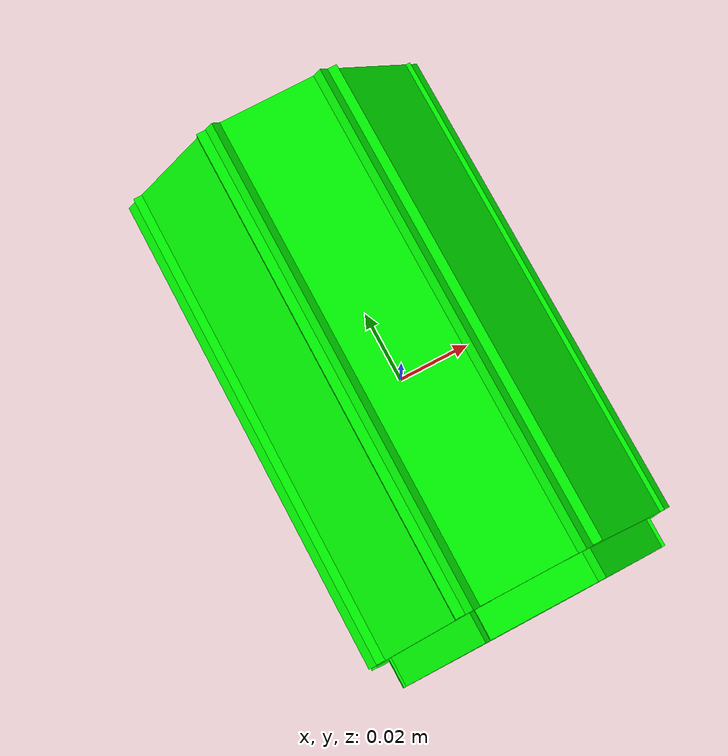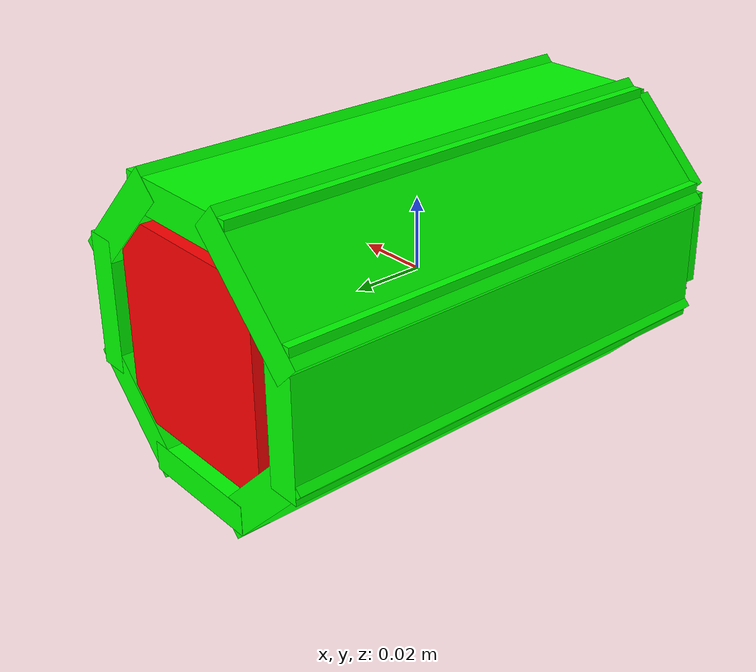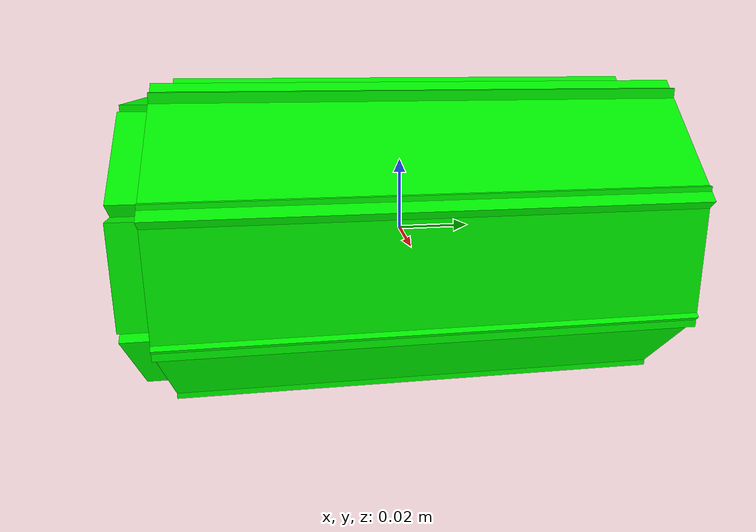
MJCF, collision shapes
<mujoco model="Cup_1">
  <compiler angle="radian" />
  <default>
    <default class="/">
      <default class="__VISUAL_MJT__">
        <geom contype="0" conaffinity="0" />
      </default>
      <default class="__STRUCTURAL_MJT__">
        <geom contype="8" conaffinity="15" group="4" friction="0.9 0.9 0.001" solref="0.025" solimp="0.998 0.998" />
      </default>
      <default class="__DYNAMIC_MJT__">
        <geom conaffinity="15" group="4" friction="0.9 0.9 0.001" solref="0.025" solimp="0.998 0.998" />
      </default>
    </default>
  </default>
  <asset>
    <material name="material_Cup_Decals_Off_Mat" class="/" rgba="1 1 1 1" metallic="0.000000" roughness="0.020000" clearcoat="0.25" clearcoatroughness="0.05" transmission="1.00" thickness="0.002" ior="1.50" />
    <material name="material_Cup1_Mat" class="/" rgba="1 1 1 1" metallic="0.000000" roughness="0.020000" clearcoat="0.25" clearcoatroughness="0.05" transmission="1.00" thickness="0.002" ior="1.50" />
    <mesh name="Cup_1_cup_1_0" class="/" content_type="model/obj" file="assets/Cup_1_cup_1/Cup_1_cup_1_0.obj" />
    <mesh name="Cup_1_cup_1_1" class="/" content_type="model/obj" file="assets/Cup_1_cup_1/Cup_1_cup_1_1.obj" />
  </asset>
  <worldbody>
    <body name="Cup_1">
      <joint name="Cup_1_free" class="/" type="free" limited="false" actuatorfrclimited="false" damping="0.1" />
      <geom name="Cup_1_cup_1_0" class="__VISUAL_MJT__" type="mesh" material="material_Cup_Decals_Off_Mat" mesh="Cup_1_cup_1_0" pos="0 -0.07115 0.00039" mass="0"/>
      <geom name="Cup_1_cup_1_1" class="__VISUAL_MJT__" type="mesh" material="material_Cup1_Mat" mesh="Cup_1_cup_1_1" pos="0 -0.07115 0.00039" mass="0"/>
      <geom name="Cup_1_cup_1_PrimitiveCollider_0" class="__DYNAMIC_MJT__" size="0.0183736 0.0669554 0.00413516" pos="0 0.003925 -0.0361778" quat="0 1 0 0" type="box" rgba="0 1 0 1" density="519.922"/>
      <geom name="Cup_1_cup_1_PrimitiveCollider_1" class="__DYNAMIC_MJT__" size="0.0195148 0.0668771 0.00465837" pos="0 0.003925 0.0357707" quat="0 1 0 0" type="box" rgba="0 1 0 1" density="519.922"/>
      <geom name="Cup_1_cup_1_PrimitiveCollider_2" class="__DYNAMIC_MJT__" size="0.0183736 0.066945 0.00430479" pos="0.036151 0.003925 -0.000196512" quat="0 0.707108 0 0.707106" type="box" rgba="0 1 0 1" density="519.922"/>
      <geom name="Cup_1_cup_1_PrimitiveCollider_3" class="__DYNAMIC_MJT__" size="0.0195148 0.0669333 0.00457359" pos="-0.0358823 0.003925 -0.000196428" quat="0 0.707108 0 0.707106" type="box" rgba="0 1 0 1" density="519.922"/>
      <geom name="Cup_1_cup_1_PrimitiveCollider_4" class="__DYNAMIC_MJT__" size="0.0183736 0.066878 0.00472886" pos="-0.0258625 0.003925 -0.0260589" quat="0 0.92388 0 -0.382683" type="box" rgba="0 1 0 1" density="519.922"/>
      <geom name="Cup_1_cup_1_PrimitiveCollider_5" class="__DYNAMIC_MJT__" size="0.0195148 0.0669444 0.00469778" pos="0.0254604 0.003925 0.025264" quat="0 0.92388 0 -0.382683" type="box" rgba="0 1 0 1" density="519.922"/>
      <geom name="Cup_1_cup_1_PrimitiveCollider_6" class="__DYNAMIC_MJT__" size="0.0183736 0.0669335 0.00418911" pos="0.0254808 0.003925 -0.0256772" quat="0 0.92388 0 0.382683" type="box" rgba="0 1 0 1" density="519.922"/>
      <geom name="Cup_1_cup_1_PrimitiveCollider_7" class="__DYNAMIC_MJT__" size="0.0195148 0.0669644 0.00469775" pos="-0.0254604 0.003925 0.025264" quat="0 0.92388 0 0.382683" type="box" rgba="0 1 0 1" density="519.922"/>
      <geom name="Cup_1_cup_1_PrimitiveCollider_8" class="__DYNAMIC_MJT__" size="0.0143809 0.00998984 0.0368513" pos="0 -0.0608896 0.0004081035" quat="0 1 0 0" type="box" rgba="0 1 0 1" density="519.922"/>
      <geom name="Cup_1_cup_1_PrimitiveCollider_9" class="__DYNAMIC_MJT__" size="0.0131506 0.00999146 0.0370475" pos="-4.91273e-08 -0.0608893 0.0004081448" quat="0 0.707108 0 -0.707106" type="box" rgba="0 1 0 1" density="519.922"/>
      <geom name="Cup_1_cup_1_PrimitiveCollider_10" class="__DYNAMIC_MJT__" size="0.0147059 0.00999151 0.0368512" pos="4.79631e-08 -0.0608893 0.0004080985" quat="0 0.92388 0 0.382683" type="box" rgba="0 1 0 1" density="519.922"/>
      <geom name="Cup_1_cup_1_PrimitiveCollider_11" class="__DYNAMIC_MJT__" size="0.0132118 0.00999146 0.0368512" pos="-4.84288e-08 -0.0608893 0.0004080983" quat="0 0.92388 0 -0.382683" type="box" rgba="0 1 0 1" density="519.922"/>
      <site name="Cup_1_cup_1_ReceptacleCollider_0" class="/" pos="0 0.0094606 0.00039" quat="0 1 0 0" size="0.0261601 0.0609515 0.0273428" type="box" rgba="1 0 0 1" />
    </body>
  </worldbody>
  <keyframe>
    <key name="upright" qpos="0 0 0.073 0.707107 0.707107 0 0" />
  </keyframe>
</mujoco>
